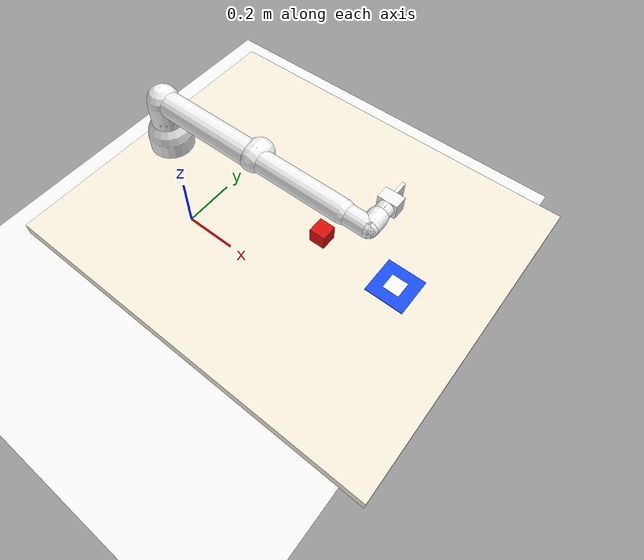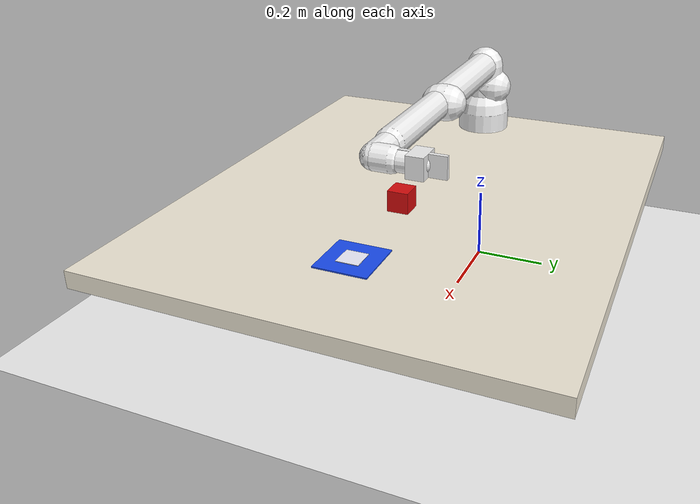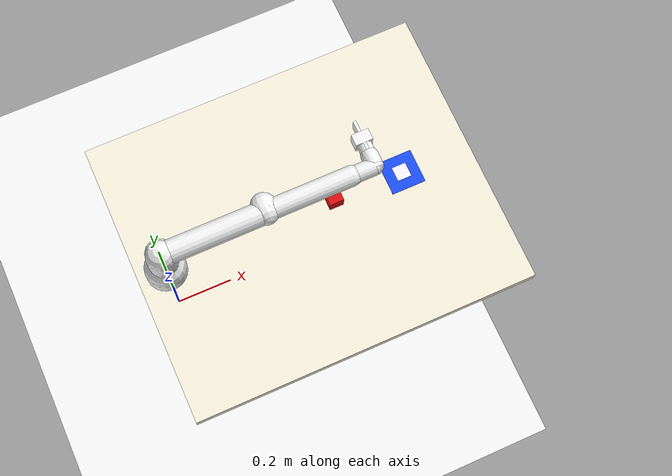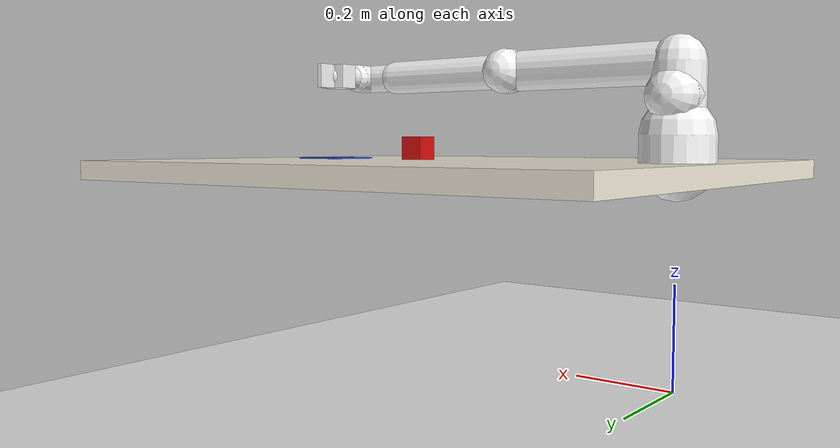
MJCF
<mujoco model="UR5e-style arm + gripper">
  <option timestep="0.005" iterations="50" solver="Newton" integrator="Euler" cone="pyramidal"/>

  <compiler angle="radian" meshdir="../share/mujoco/meshes"/>

  <visual>
    <global offheight="1024" offwidth="1024"/>
    <rgba haze="0.15 0.25 0.35 1"/>
    <quality shadowsize="4096"/>
  </visual>

  <default>
    <motor ctrlrange="-1 1" ctrllimited="true"/>
    <joint damping="1.5" armature="0.5" frictionloss="0.1"/>
    <geom type="capsule" rgba="0.95 0.95 0.95 1"/>
  </default>

  <asset>
    <texture type="skybox" builtin="gradient" rgb1="0.4 0.5 0.7" rgb2="0.1 0.15 0.2"
             width="512" height="512"/>
    <texture name="texplane" type="2d" builtin="checker" rgb1="0.3 0.3 0.4"
             rgb2="0.4 0.4 0.5" width="512" height="512" mark="cross" markrgb="0.8 0.8 0.9"/>
    <material name="matplane" reflectance="0.4" texture="texplane" texrepeat="3 3"
              texuniform="true" rgba="0.7 0.7 0.8 1"/>
    <material name="mat_white" rgba="0.95 0.95 0.95 1" specular="0.4" shininess="0.6"/>
    <material name="mat_gray" rgba="0.55 0.55 0.6 1" specular="0.6" shininess="0.8"/>
    <material name="mat_dark" rgba="0.18 0.18 0.22 1" specular="0.3" shininess="0.4"/>
    <material name="mat_red" rgba="0.85 0.2 0.2 1" specular="0.5" shininess="0.7"/>
    <material name="mat_green" rgba="0.2 0.7 0.3 1" specular="0.5" shininess="0.7"/>
    <material name="mat_blue" rgba="0.2 0.4 0.85 1" specular="0.5" shininess="0.7"/>
    <material name="mat_cube_red" rgba="0.9 0.2 0.2 1" specular="0.5" shininess="0.8"/>
    <material name="mat_bowl_blue" rgba="0.2 0.4 0.85 1" specular="0.6" shininess="0.9"/>
  </asset>

  <worldbody>
    <light directional="true" diffuse=".9 .9 .9" specular=".3 .3 .3" pos="0 0 5" dir="0 0 -1"/>
    <light directional="true" diffuse=".5 .5 .5" specular="0 0 0" pos="2 -2 3" dir="-0.5 0.5 -1"/>

    <geom name="floor" pos="0 0 0" size="1 1 0.05" type="plane" material="matplane" condim="3"/>
    <geom name="table" pos="0.5 0 0.4" size="0.6 0.5 0.02" type="box" material="mat_white"
          rgba="0.95 0.92 0.85 1" condim="3"/>

    <body name="cube" pos="0.6 0.0 0.445">
      <freejoint name="cube_free"/>
      <geom name="cube_geom" type="box" size="0.025 0.025 0.025"
            rgba="0.85 0.05 0.05 1" mass="0.2" condim="4"
            solref="0.02 1.0" solimp="0.9 0.95 0.001 0.5 2"/>
    </body>

    <body name="target_zone" pos="0.85 0.0 0.421">
      <geom name="target_zone_disc" type="box" size="0.06 0.06 0.002"
            rgba="0.1 0.3 0.95 1" contype="0" conaffinity="0"/>
      <!-- Inner ring to make it pop visually as a "drop zone" not just a blue square -->
      <geom name="target_zone_inner" type="box" size="0.025 0.025 0.003"
            rgba="0.95 0.95 1.0 1" pos="0 0 0.0005" contype="0" conaffinity="0"/>
    </body>

    <!-- Camera mounted above and to the side for an over-the-shoulder view -->
    <!-- xyaxes derived from look-at (0.6,0,0.445): right=(-0.74,-0.67,0), up=(0.22,-0.24,0.95) -->
    <camera name="over_shoulder" pos="0.1 0.55 0.70" xyaxes="-0.74 -0.67 0 0.22 -0.24 0.95"
            mode="fixed" fovy="48"/>
    <!-- POV: forward from wrist looking down at workspace -->
    <!-- xyaxes derived from look-at (0.6,0,0.445): right=(0.93,-0.37,0), up=(0.21,0.51,0.84) -->
    <camera name="pov" pos="0.4 -0.5 0.80" xyaxes="0.93 -0.37 0 0.21 0.51 0.84"
            mode="fixed" fovy="55"/>
    <!-- Front top: high cinematic up-shot (default of free camera tends to similar) -->
    <!-- xyaxes derived from look-at (0.6,0,0.445): right=(0,-1,0), up=(0.94,0,0.34) -->
    <camera name="front_top" pos="0.4 0.0 1.0" xyaxes="0 -1 0 0.94 0 0.34"
            mode="fixed" fovy="42"/>
    <!-- Wrist cam: close-up low third-person -->
    <!-- xyaxes derived from look-at (0.6,0,0.445): right=(-1,0,0), up=(0,-0.49,0.87) -->
    <camera name="wrist" pos="0.6 0.45 0.7" xyaxes="-1 0 0 0 -0.49 0.87"
            mode="fixed" fovy="55"/>
    <!-- xyaxes derived from look-at (0.6,0,0.445): right=(0.83,-0.56,0), up=(0.18,0.28,0.94) -->
    <camera name="portfolio" pos="-0.2 -1.2 0.95" xyaxes="0.83 -0.56 0 0.18 0.28 0.94"
            mode="fixed" fovy="36"/>

    <!-- Workspace origin (the arm sits behind it) at z=0.42 (table top) -->
    <site name="workspace_origin" pos="0.6 0 0.42" size="0.01" rgba="0 1 0 0.5"/>

    <!-- Robot base -->
    <body name="base" pos="0 0 0.42">
      <!-- Base disc -->
      <geom name="base_disc" type="capsule" size="0.07" fromto="0 0 0  0 0 0.05"
            material="mat_dark" mass="2"/>

      <!-- Shoulder pan joint (rotates around z) -->
      <body name="shoulder" pos="0 0 0.06">
        <joint name="shoulder_pan" type="hinge" axis="0 0 1" range="-3.14 3.14"/>
        <geom name="shoulder_lnk" type="capsule" size="0.05" fromto="0 0 0  0 0 0.12"
              material="mat_white" mass="1.2"/>
        <geom name="shoulder_pad" type="capsule" fromto="0.0 0.0 0.06  0.0 0.025 0.06" size="0.05"
              material="mat_dark" contype="0" conaffinity="0"/>

        <!-- Upper arm pivots around y (shoulder_lift) -->
        <body name="upper_arm" pos="0 0 0.12">
          <joint name="shoulder_lift" type="hinge" axis="0 1 0" range="-3.14 3.14"/>
          <geom name="upper_arm_lnk" type="capsule" size="0.04" fromto="0 0 0  0.36 0 0"
                material="mat_white" mass="1.5"/>

          <!-- Inner upper arm pivots around y (elbow) -->
          <body name="elbow" pos="0.36 0 0">
            <joint name="elbow" type="hinge" axis="0 1 0" range="-3.14 3.14"/>
            <geom name="elbow_pad" type="capsule" fromto="0.0 0.0 0.0  0.0 0.02 0.0" size="0.045"
                  material="mat_dark" contype="0" conaffinity="0"/>
            <geom name="forearm" type="capsule" size="0.035" fromto="0 0 0  0.30 0 0"
                  material="mat_white" mass="1.0"/>

            <!-- Forearm roll -->
            <body name="forearm_roll" pos="0.30 0 0">
              <joint name="forearm_roll" type="hinge" axis="1 0 0" range="-3.14 3.14"/>
              <geom name="forearm2" type="capsule" size="0.03" fromto="0 0 0  0.08 0 0"
                    material="mat_gray" mass="0.5"/>

              <!-- Wrist pitch -->
              <body name="wrist_pitch" pos="0.08 0 0">
                <joint name="wrist_pitch" type="hinge" axis="0 1 0" range="-3.14 3.14"/>
                <geom name="wrist1" type="capsule" fromto="0.0 0.0 0.0  0.0 0.04 0.0" size="0.03"
                      material="mat_dark" mass="0.3"/>

                <!-- Wrist roll (gripper rotates around tool axis) -->
                <body name="wrist_roll" pos="0 0 0">
                  <joint name="wrist_roll" type="hinge" axis="1 0 0" range="-3.14 3.14"/>
                  <geom name="wrist2" type="capsule" fromto="0.0 0.05 0.0  0.0 0.1 0.0" size="0.025"
                        material="mat_dark" mass="0.3"/>

                  <!-- Gripper base, EE site aligned with grasp center. -->
                  <body name="gripper" pos="0 0.10 0">
                    <geom name="gripper_base" type="box" size="0.03 0.02 0.025"
                          material="mat_gray" mass="0.2" pos="0 0 0" euler="0 0 0"/>

                    <!-- Left finger at +y side, right finger at -y side.
                         Each slides along x toward the EE y=0 line. Both meet at y=0 when closed. -->
                    <body name="finger_left" pos="0 0.04 0">
                      <joint name="finger_left" type="slide" axis="1 0 0"
                             range="-0.04 0" limited="true"/>
                      <geom name="finger_left_geom" type="box" size="0.005 0.02 0.025"
                            material="mat_white" mass="0.08"/>
                    </body>
                    <body name="finger_right" pos="0 -0.04 0">
                      <joint name="finger_right" type="slide" axis="1 0 0"
                             range="0 0.04" limited="true"/>
                      <geom name="finger_right_geom" type="box" size="0.005 0.02 0.025"
                            material="mat_white" mass="0.08"/>
                    </body>

                    <site name="ee_center" pos="0 0.04 0" size="0.005"
                          rgba="0 1 0 0.8"/>
                  </body>

                  <camera name="gripper_cam" pos="0 0.04 0.06"
                          quat="0.766 0.643 0 0"
                          fovy="80" mode="fixed"/>
                </body>
              </body>
            </body>
          </body>
        </body>
      </body>
    </body>
  </worldbody>

  <!-- Actuators: 6 arm motors + 1 coupled gripper motor -->
  <actuator>
    <motor name="shoulder_pan_motor" joint="shoulder_pan" gear="60"/>
    <motor name="shoulder_lift_motor" joint="shoulder_lift" gear="60"/>
    <motor name="elbow_motor" joint="elbow" gear="40"/>
    <motor name="forearm_roll_motor" joint="forearm_roll" gear="20"/>
    <motor name="wrist_pitch_motor" joint="wrist_pitch" gear="10"/>
    <motor name="wrist_roll_motor" joint="wrist_roll" gear="10"/>

    <!-- Coupled gripper motor: positive control closes fingers (slides inward) -->
    <motor name="gripper_motor" joint="finger_left" gear="20" ctrllimited="true"
           ctrlrange="-1 1"/>
    <!-- Mimic finger_right to mirror finger_left -->
  </actuator>

  <equality>
    <joint joint1="finger_right" joint2="finger_left" polycoef="0 1 0 0 0"/>
  </equality>
</mujoco>
